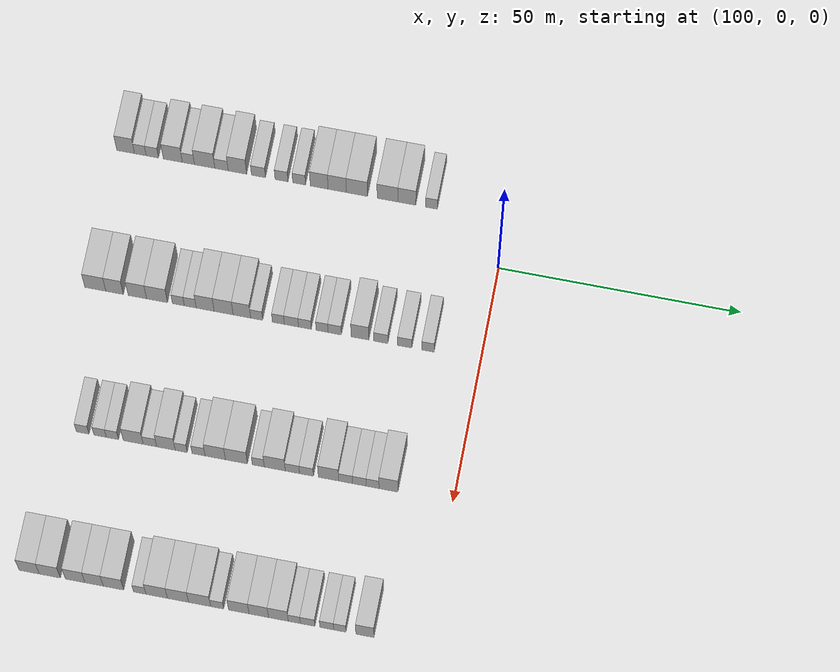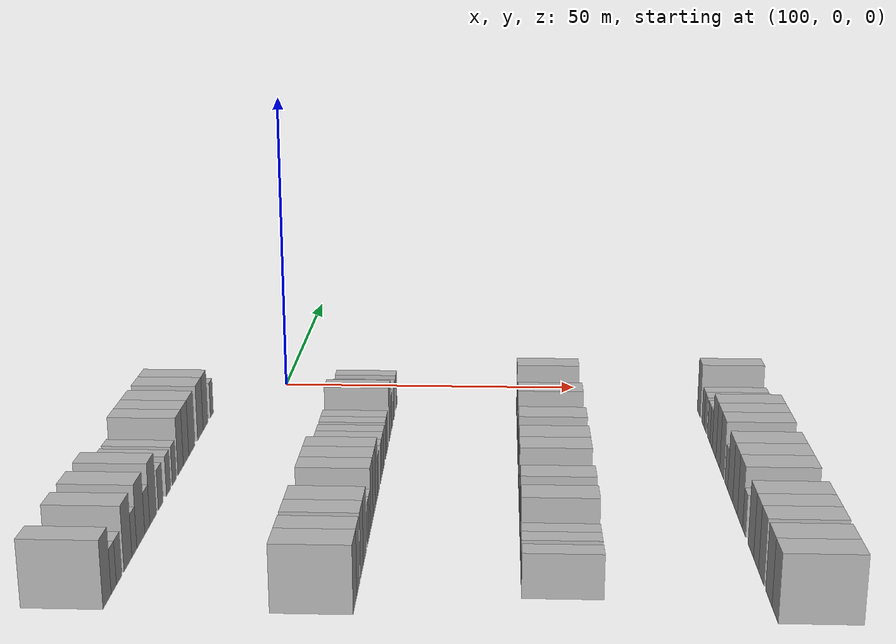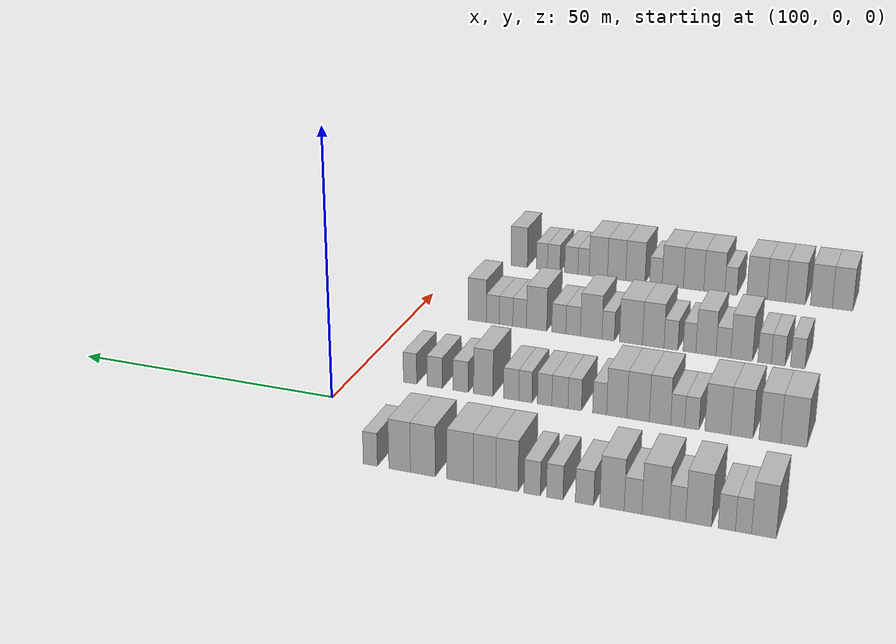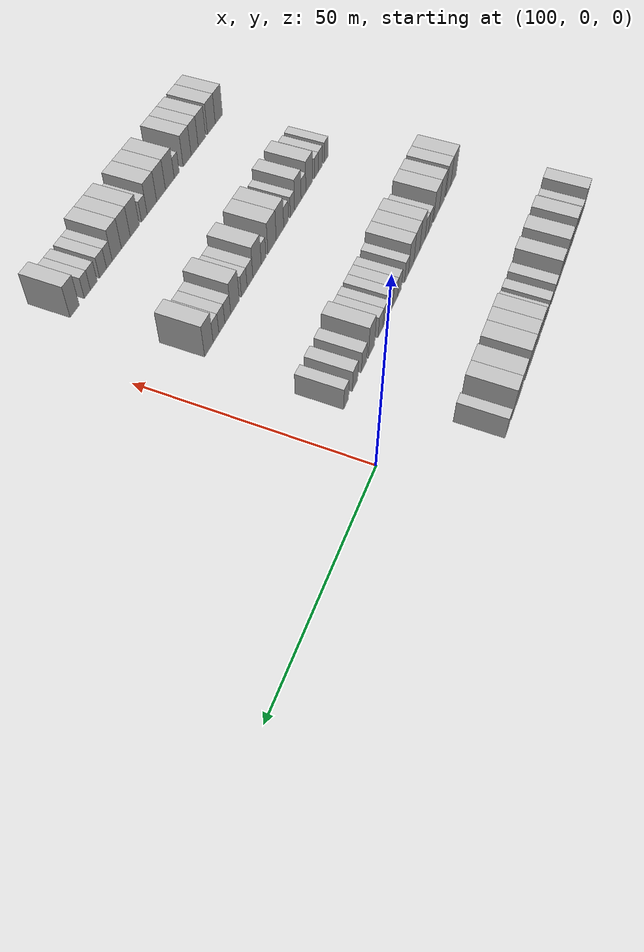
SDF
<sdf version="1.6">
 <world name="default">
  <model name="building_552">
   <static>1</static>
   <pose>85.0000 -79.7721 0 0.000000 0.000000 0.000000</pose>
   <link name="link">
    <pose>0 0 4.50 0 0 0</pose>
    <collision name="collision"><geometry><box><size>10.0000 3.7141 9.0000</size></box></geometry></collision>
    <visual name="visual">
     <cast_shadows>0</cast_shadows>
     <geometry><box><size>10.0000 3.7141 9.0000</size></box></geometry>
     <material>
      <script>
       <uri>model://HANNAS_wall/materials/scripts</uri>
       <uri>model://HANNAS_wall/materials/textures</uri>
       <name>vrc/HANNAS_wall</name>
      </script>
     </material>
    </visual>
   </link>
  </model>
  <model name="building_553">
   <static>1</static>
   <pose>85.0000 -76.7027 0 0.000000 0.000000 0.000000</pose>
   <link name="link">
    <pose>0 0 3.00 0 0 0</pose>
    <collision name="collision"><geometry><box><size>10.0000 2.4245 6.0000</size></box></geometry></collision>
    <visual name="visual">
     <cast_shadows>0</cast_shadows>
     <geometry><box><size>10.0000 2.4245 6.0000</size></box></geometry>
     <material>
      <script>
       <uri>model://HANNAS_wall/materials/scripts</uri>
       <uri>model://HANNAS_wall/materials/textures</uri>
       <name>vrc/HANNAS_wall</name>
      </script>
     </material>
    </visual>
   </link>
  </model>
  <model name="building_554">
   <static>1</static>
   <pose>85.0000 -74.1821 0 0.000000 0.000000 0.000000</pose>
   <link name="link">
    <pose>0 0 3.00 0 0 0</pose>
    <collision name="collision"><geometry><box><size>10.0000 2.6168 6.0000</size></box></geometry></collision>
    <visual name="visual">
     <cast_shadows>0</cast_shadows>
     <geometry><box><size>10.0000 2.6168 6.0000</size></box></geometry>
     <material>
      <script>
       <uri>model://HANNAS_wall/materials/scripts</uri>
       <uri>model://HANNAS_wall/materials/textures</uri>
       <name>vrc/HANNAS_wall</name>
      </script>
     </material>
    </visual>
   </link>
  </model>
  <model name="building_555">
   <static>1</static>
   <pose>85.0000 -69.8786 0 0.000000 0.000000 0.000000</pose>
   <link name="link">
    <pose>0 0 4.50 0 0 0</pose>
    <collision name="collision"><geometry><box><size>10.0000 3.9900 9.0000</size></box></geometry></collision>
    <visual name="visual">
     <cast_shadows>0</cast_shadows>
     <geometry><box><size>10.0000 3.9900 9.0000</size></box></geometry>
     <material>
      <script>
       <uri>model://HANNAS_wall/materials/scripts</uri>
       <uri>model://HANNAS_wall/materials/textures</uri>
       <name>vrc/HANNAS_wall</name>
      </script>
     </material>
    </visual>
   </link>
  </model>
  <model name="building_556">
   <static>1</static>
   <pose>85.0000 -66.6171 0 0.000000 0.000000 0.000000</pose>
   <link name="link">
    <pose>0 0 3.00 0 0 0</pose>
    <collision name="collision"><geometry><box><size>10.0000 2.5330 6.0000</size></box></geometry></collision>
    <visual name="visual">
     <cast_shadows>0</cast_shadows>
     <geometry><box><size>10.0000 2.5330 6.0000</size></box></geometry>
     <material>
      <script>
       <uri>model://HANNAS_wall/materials/scripts</uri>
       <uri>model://HANNAS_wall/materials/textures</uri>
       <name>vrc/HANNAS_wall</name>
      </script>
     </material>
    </visual>
   </link>
  </model>
  <model name="building_557">
   <static>1</static>
   <pose>85.0000 -63.2118 0 0.000000 0.000000 0.000000</pose>
   <link name="link">
    <pose>0 0 4.50 0 0 0</pose>
    <collision name="collision"><geometry><box><size>10.0000 4.2775 9.0000</size></box></geometry></collision>
    <visual name="visual">
     <cast_shadows>0</cast_shadows>
     <geometry><box><size>10.0000 4.2775 9.0000</size></box></geometry>
     <material>
      <script>
       <uri>model://HANNAS_wall/materials/scripts</uri>
       <uri>model://HANNAS_wall/materials/textures</uri>
       <name>vrc/HANNAS_wall</name>
      </script>
     </material>
    </visual>
   </link>
  </model>
  <model name="building_558">
   <static>1</static>
   <pose>85.0000 -59.6736 0 0.000000 0.000000 0.000000</pose>
   <link name="link">
    <pose>0 0 3.00 0 0 0</pose>
    <collision name="collision"><geometry><box><size>10.0000 2.7989 6.0000</size></box></geometry></collision>
    <visual name="visual">
     <cast_shadows>0</cast_shadows>
     <geometry><box><size>10.0000 2.7989 6.0000</size></box></geometry>
     <material>
      <script>
       <uri>model://HANNAS_wall/materials/scripts</uri>
       <uri>model://HANNAS_wall/materials/textures</uri>
       <name>vrc/HANNAS_wall</name>
      </script>
     </material>
    </visual>
   </link>
  </model>
  <model name="building_559">
   <static>1</static>
   <pose>85.0000 -56.3443 0 0.000000 0.000000 0.000000</pose>
   <link name="link">
    <pose>0 0 4.50 0 0 0</pose>
    <collision name="collision"><geometry><box><size>10.0000 3.8599 9.0000</size></box></geometry></collision>
    <visual name="visual">
     <cast_shadows>0</cast_shadows>
     <geometry><box><size>10.0000 3.8599 9.0000</size></box></geometry>
     <material>
      <script>
       <uri>model://HANNAS_wall/materials/scripts</uri>
       <uri>model://HANNAS_wall/materials/textures</uri>
       <name>vrc/HANNAS_wall</name>
      </script>
     </material>
    </visual>
   </link>
  </model>
  <model name="building_560">
   <static>1</static>
   <pose>85.0000 -51.9395 0 0.000000 0.000000 0.000000</pose>
   <link name="link">
    <pose>0 0 3.00 0 0 0</pose>
    <collision name="collision"><geometry><box><size>10.0000 2.9497 6.0000</size></box></geometry></collision>
    <visual name="visual">
     <cast_shadows>0</cast_shadows>
     <geometry><box><size>10.0000 2.9497 6.0000</size></box></geometry>
     <material>
      <script>
       <uri>model://HANNAS_wall/materials/scripts</uri>
       <uri>model://HANNAS_wall/materials/textures</uri>
       <name>vrc/HANNAS_wall</name>
      </script>
     </material>
    </visual>
   </link>
  </model>
  <model name="building_561">
   <static>1</static>
   <pose>85.0000 -47.1184 0 0.000000 0.000000 0.000000</pose>
   <link name="link">
    <pose>0 0 3.00 0 0 0</pose>
    <collision name="collision"><geometry><box><size>10.0000 2.6925 6.0000</size></box></geometry></collision>
    <visual name="visual">
     <cast_shadows>0</cast_shadows>
     <geometry><box><size>10.0000 2.6925 6.0000</size></box></geometry>
     <material>
      <script>
       <uri>model://HANNAS_wall/materials/scripts</uri>
       <uri>model://HANNAS_wall/materials/textures</uri>
       <name>vrc/HANNAS_wall</name>
      </script>
     </material>
    </visual>
   </link>
  </model>
  <model name="building_562">
   <static>1</static>
   <pose>85.0000 -43.4355 0 0.000000 0.000000 0.000000</pose>
   <link name="link">
    <pose>0 0 3.00 0 0 0</pose>
    <collision name="collision"><geometry><box><size>10.0000 2.6732 6.0000</size></box></geometry></collision>
    <visual name="visual">
     <cast_shadows>0</cast_shadows>
     <geometry><box><size>10.0000 2.6732 6.0000</size></box></geometry>
     <material>
      <script>
       <uri>model://HANNAS_wall/materials/scripts</uri>
       <uri>model://HANNAS_wall/materials/textures</uri>
       <name>vrc/HANNAS_wall</name>
      </script>
     </material>
    </visual>
   </link>
  </model>
  <model name="building_563">
   <static>1</static>
   <pose>85.0000 -39.2434 0 0.000000 0.000000 0.000000</pose>
   <link name="link">
    <pose>0 0 4.50 0 0 0</pose>
    <collision name="collision"><geometry><box><size>10.0000 3.7110 9.0000</size></box></geometry></collision>
    <visual name="visual">
     <cast_shadows>0</cast_shadows>
     <geometry><box><size>10.0000 3.7110 9.0000</size></box></geometry>
     <material>
      <script>
       <uri>model://HANNAS_wall/materials/scripts</uri>
       <uri>model://HANNAS_wall/materials/textures</uri>
       <name>vrc/HANNAS_wall</name>
      </script>
     </material>
    </visual>
   </link>
  </model>
  <model name="building_564">
   <static>1</static>
   <pose>85.0000 -35.4805 0 0.000000 0.000000 0.000000</pose>
   <link name="link">
    <pose>0 0 4.50 0 0 0</pose>
    <collision name="collision"><geometry><box><size>10.0000 3.8146 9.0000</size></box></geometry></collision>
    <visual name="visual">
     <cast_shadows>0</cast_shadows>
     <geometry><box><size>10.0000 3.8146 9.0000</size></box></geometry>
     <material>
      <script>
       <uri>model://HANNAS_wall/materials/scripts</uri>
       <uri>model://HANNAS_wall/materials/textures</uri>
       <name>vrc/HANNAS_wall</name>
      </script>
     </material>
    </visual>
   </link>
  </model>
  <model name="building_565">
   <static>1</static>
   <pose>85.0000 -31.3632 0 0.000000 0.000000 0.000000</pose>
   <link name="link">
    <pose>0 0 4.50 0 0 0</pose>
    <collision name="collision"><geometry><box><size>10.0000 4.4200 9.0000</size></box></geometry></collision>
    <visual name="visual">
     <cast_shadows>0</cast_shadows>
     <geometry><box><size>10.0000 4.4200 9.0000</size></box></geometry>
     <material>
      <script>
       <uri>model://HANNAS_wall/materials/scripts</uri>
       <uri>model://HANNAS_wall/materials/textures</uri>
       <name>vrc/HANNAS_wall</name>
      </script>
     </material>
    </visual>
   </link>
  </model>
  <model name="building_566">
   <static>1</static>
   <pose>85.0000 -25.0076 0 0.000000 0.000000 0.000000</pose>
   <link name="link">
    <pose>0 0 4.50 0 0 0</pose>
    <collision name="collision"><geometry><box><size>10.0000 4.2912 9.0000</size></box></geometry></collision>
    <visual name="visual">
     <cast_shadows>0</cast_shadows>
     <geometry><box><size>10.0000 4.2912 9.0000</size></box></geometry>
     <material>
      <script>
       <uri>model://HANNAS_wall/materials/scripts</uri>
       <uri>model://HANNAS_wall/materials/textures</uri>
       <name>vrc/HANNAS_wall</name>
      </script>
     </material>
    </visual>
   </link>
  </model>
  <model name="building_567">
   <static>1</static>
   <pose>85.0000 -20.9846 0 0.000000 0.000000 0.000000</pose>
   <link name="link">
    <pose>0 0 4.50 0 0 0</pose>
    <collision name="collision"><geometry><box><size>10.0000 3.7547 9.0000</size></box></geometry></collision>
    <visual name="visual">
     <cast_shadows>0</cast_shadows>
     <geometry><box><size>10.0000 3.7547 9.0000</size></box></geometry>
     <material>
      <script>
       <uri>model://HANNAS_wall/materials/scripts</uri>
       <uri>model://HANNAS_wall/materials/textures</uri>
       <name>vrc/HANNAS_wall</name>
      </script>
     </material>
    </visual>
   </link>
  </model>
  <model name="building_568">
   <static>1</static>
   <pose>85.0000 -15.8609 0 0.000000 0.000000 0.000000</pose>
   <link name="link">
    <pose>0 0 3.00 0 0 0</pose>
    <collision name="collision"><geometry><box><size>10.0000 2.4927 6.0000</size></box></geometry></collision>
    <visual name="visual">
     <cast_shadows>0</cast_shadows>
     <geometry><box><size>10.0000 2.4927 6.0000</size></box></geometry>
     <material>
      <script>
       <uri>model://HANNAS_wall/materials/scripts</uri>
       <uri>model://HANNAS_wall/materials/textures</uri>
       <name>vrc/HANNAS_wall</name>
      </script>
     </material>
    </visual>
   </link>
  </model>
  <model name="building_775">
   <static>1</static>
   <pose>115.0000 -79.6129 0 0.000000 0.000000 0.000000</pose>
   <link name="link">
    <pose>0 0 4.50 0 0 0</pose>
    <collision name="collision"><geometry><box><size>10.0000 4.3654 9.0000</size></box></geometry></collision>
    <visual name="visual">
     <cast_shadows>0</cast_shadows>
     <geometry><box><size>10.0000 4.3654 9.0000</size></box></geometry>
     <material>
      <script>
       <uri>model://HANNAS_wall/materials/scripts</uri>
       <uri>model://HANNAS_wall/materials/textures</uri>
       <name>vrc/HANNAS_wall</name>
      </script>
     </material>
    </visual>
   </link>
  </model>
  <model name="building_776">
   <static>1</static>
   <pose>115.0000 -75.6115 0 0.000000 0.000000 0.000000</pose>
   <link name="link">
    <pose>0 0 4.50 0 0 0</pose>
    <collision name="collision"><geometry><box><size>10.0000 3.6374 9.0000</size></box></geometry></collision>
    <visual name="visual">
     <cast_shadows>0</cast_shadows>
     <geometry><box><size>10.0000 3.6374 9.0000</size></box></geometry>
     <material>
      <script>
       <uri>model://HANNAS_wall/materials/scripts</uri>
       <uri>model://HANNAS_wall/materials/textures</uri>
       <name>vrc/HANNAS_wall</name>
      </script>
     </material>
    </visual>
   </link>
  </model>
  <model name="building_777">
   <static>1</static>
   <pose>115.0000 -70.8860 0 0.000000 0.000000 0.000000</pose>
   <link name="link">
    <pose>0 0 4.50 0 0 0</pose>
    <collision name="collision"><geometry><box><size>10.0000 3.8137 9.0000</size></box></geometry></collision>
    <visual name="visual">
     <cast_shadows>0</cast_shadows>
     <geometry><box><size>10.0000 3.8137 9.0000</size></box></geometry>
     <material>
      <script>
       <uri>model://HANNAS_wall/materials/scripts</uri>
       <uri>model://HANNAS_wall/materials/textures</uri>
       <name>vrc/HANNAS_wall</name>
      </script>
     </material>
    </visual>
   </link>
  </model>
  <model name="building_778">
   <static>1</static>
   <pose>115.0000 -66.8018 0 0.000000 0.000000 0.000000</pose>
   <link name="link">
    <pose>0 0 4.50 0 0 0</pose>
    <collision name="collision"><geometry><box><size>10.0000 4.3546 9.0000</size></box></geometry></collision>
    <visual name="visual">
     <cast_shadows>0</cast_shadows>
     <geometry><box><size>10.0000 4.3546 9.0000</size></box></geometry>
     <material>
      <script>
       <uri>model://HANNAS_wall/materials/scripts</uri>
       <uri>model://HANNAS_wall/materials/textures</uri>
       <name>vrc/HANNAS_wall</name>
      </script>
     </material>
    </visual>
   </link>
  </model>
  <model name="building_779">
   <static>1</static>
   <pose>115.0000 -62.3872 0 0.000000 0.000000 0.000000</pose>
   <link name="link">
    <pose>0 0 3.00 0 0 0</pose>
    <collision name="collision"><geometry><box><size>10.0000 2.4748 6.0000</size></box></geometry></collision>
    <visual name="visual">
     <cast_shadows>0</cast_shadows>
     <geometry><box><size>10.0000 2.4748 6.0000</size></box></geometry>
     <material>
      <script>
       <uri>model://HANNAS_wall/materials/scripts</uri>
       <uri>model://HANNAS_wall/materials/textures</uri>
       <name>vrc/HANNAS_wall</name>
      </script>
     </material>
    </visual>
   </link>
  </model>
  <model name="building_780">
   <static>1</static>
   <pose>115.0000 -59.9182 0 0.000000 0.000000 0.000000</pose>
   <link name="link">
    <pose>0 0 3.00 0 0 0</pose>
    <collision name="collision"><geometry><box><size>10.0000 2.4631 6.0000</size></box></geometry></collision>
    <visual name="visual">
     <cast_shadows>0</cast_shadows>
     <geometry><box><size>10.0000 2.4631 6.0000</size></box></geometry>
     <material>
      <script>
       <uri>model://HANNAS_wall/materials/scripts</uri>
       <uri>model://HANNAS_wall/materials/textures</uri>
       <name>vrc/HANNAS_wall</name>
      </script>
     </material>
    </visual>
   </link>
  </model>
  <model name="building_781">
   <static>1</static>
   <pose>115.0000 -56.8294 0 0.000000 0.000000 0.000000</pose>
   <link name="link">
    <pose>0 0 4.50 0 0 0</pose>
    <collision name="collision"><geometry><box><size>10.0000 3.7147 9.0000</size></box></geometry></collision>
    <visual name="visual">
     <cast_shadows>0</cast_shadows>
     <geometry><box><size>10.0000 3.7147 9.0000</size></box></geometry>
     <material>
      <script>
       <uri>model://HANNAS_wall/materials/scripts</uri>
       <uri>model://HANNAS_wall/materials/textures</uri>
       <name>vrc/HANNAS_wall</name>
      </script>
     </material>
    </visual>
   </link>
  </model>
  <model name="building_782">
   <static>1</static>
   <pose>115.0000 -53.0049 0 0.000000 0.000000 0.000000</pose>
   <link name="link">
    <pose>0 0 4.50 0 0 0</pose>
    <collision name="collision"><geometry><box><size>10.0000 3.9342 9.0000</size></box></geometry></collision>
    <visual name="visual">
     <cast_shadows>0</cast_shadows>
     <geometry><box><size>10.0000 3.9342 9.0000</size></box></geometry>
     <material>
      <script>
       <uri>model://HANNAS_wall/materials/scripts</uri>
       <uri>model://HANNAS_wall/materials/textures</uri>
       <name>vrc/HANNAS_wall</name>
      </script>
     </material>
    </visual>
   </link>
  </model>
  <model name="building_783">
   <static>1</static>
   <pose>115.0000 -49.2304 0 0.000000 0.000000 0.000000</pose>
   <link name="link">
    <pose>0 0 4.50 0 0 0</pose>
    <collision name="collision"><geometry><box><size>10.0000 3.6148 9.0000</size></box></geometry></collision>
    <visual name="visual">
     <cast_shadows>0</cast_shadows>
     <geometry><box><size>10.0000 3.6148 9.0000</size></box></geometry>
     <material>
      <script>
       <uri>model://HANNAS_wall/materials/scripts</uri>
       <uri>model://HANNAS_wall/materials/textures</uri>
       <name>vrc/HANNAS_wall</name>
      </script>
     </material>
    </visual>
   </link>
  </model>
  <model name="building_784">
   <static>1</static>
   <pose>115.0000 -46.1725 0 0.000000 0.000000 0.000000</pose>
   <link name="link">
    <pose>0 0 3.00 0 0 0</pose>
    <collision name="collision"><geometry><box><size>10.0000 2.5010 6.0000</size></box></geometry></collision>
    <visual name="visual">
     <cast_shadows>0</cast_shadows>
     <geometry><box><size>10.0000 2.5010 6.0000</size></box></geometry>
     <material>
      <script>
       <uri>model://HANNAS_wall/materials/scripts</uri>
       <uri>model://HANNAS_wall/materials/textures</uri>
       <name>vrc/HANNAS_wall</name>
      </script>
     </material>
    </visual>
   </link>
  </model>
  <model name="building_785">
   <static>1</static>
   <pose>115.0000 -41.6934 0 0.000000 0.000000 0.000000</pose>
   <link name="link">
    <pose>0 0 3.00 0 0 0</pose>
    <collision name="collision"><geometry><box><size>10.0000 2.4573 6.0000</size></box></geometry></collision>
    <visual name="visual">
     <cast_shadows>0</cast_shadows>
     <geometry><box><size>10.0000 2.4573 6.0000</size></box></geometry>
     <material>
      <script>
       <uri>model://HANNAS_wall/materials/scripts</uri>
       <uri>model://HANNAS_wall/materials/textures</uri>
       <name>vrc/HANNAS_wall</name>
      </script>
     </material>
    </visual>
   </link>
  </model>
  <model name="building_786">
   <static>1</static>
   <pose>115.0000 -38.9997 0 0.000000 0.000000 0.000000</pose>
   <link name="link">
    <pose>0 0 3.00 0 0 0</pose>
    <collision name="collision"><geometry><box><size>10.0000 2.9301 6.0000</size></box></geometry></collision>
    <visual name="visual">
     <cast_shadows>0</cast_shadows>
     <geometry><box><size>10.0000 2.9301 6.0000</size></box></geometry>
     <material>
      <script>
       <uri>model://HANNAS_wall/materials/scripts</uri>
       <uri>model://HANNAS_wall/materials/textures</uri>
       <name>vrc/HANNAS_wall</name>
      </script>
     </material>
    </visual>
   </link>
  </model>
  <model name="building_787">
   <static>1</static>
   <pose>115.0000 -36.2115 0 0.000000 0.000000 0.000000</pose>
   <link name="link">
    <pose>0 0 3.00 0 0 0</pose>
    <collision name="collision"><geometry><box><size>10.0000 2.6463 6.0000</size></box></geometry></collision>
    <visual name="visual">
     <cast_shadows>0</cast_shadows>
     <geometry><box><size>10.0000 2.6463 6.0000</size></box></geometry>
     <material>
      <script>
       <uri>model://HANNAS_wall/materials/scripts</uri>
       <uri>model://HANNAS_wall/materials/textures</uri>
       <name>vrc/HANNAS_wall</name>
      </script>
     </material>
    </visual>
   </link>
  </model>
  <model name="building_788">
   <static>1</static>
   <pose>115.0000 -32.6613 0 0.000000 0.000000 0.000000</pose>
   <link name="link">
    <pose>0 0 3.00 0 0 0</pose>
    <collision name="collision"><geometry><box><size>10.0000 2.4540 6.0000</size></box></geometry></collision>
    <visual name="visual">
     <cast_shadows>0</cast_shadows>
     <geometry><box><size>10.0000 2.4540 6.0000</size></box></geometry>
     <material>
      <script>
       <uri>model://HANNAS_wall/materials/scripts</uri>
       <uri>model://HANNAS_wall/materials/textures</uri>
       <name>vrc/HANNAS_wall</name>
      </script>
     </material>
    </visual>
   </link>
  </model>
  <model name="building_789">
   <static>1</static>
   <pose>115.0000 -30.0411 0 0.000000 0.000000 0.000000</pose>
   <link name="link">
    <pose>0 0 3.00 0 0 0</pose>
    <collision name="collision"><geometry><box><size>10.0000 2.7864 6.0000</size></box></geometry></collision>
    <visual name="visual">
     <cast_shadows>0</cast_shadows>
     <geometry><box><size>10.0000 2.7864 6.0000</size></box></geometry>
     <material>
      <script>
       <uri>model://HANNAS_wall/materials/scripts</uri>
       <uri>model://HANNAS_wall/materials/textures</uri>
       <name>vrc/HANNAS_wall</name>
      </script>
     </material>
    </visual>
   </link>
  </model>
  <model name="building_790">
   <static>1</static>
   <pose>115.0000 -24.8198 0 0.000000 0.000000 0.000000</pose>
   <link name="link">
    <pose>0 0 4.50 0 0 0</pose>
    <collision name="collision"><geometry><box><size>10.0000 3.6562 9.0000</size></box></geometry></collision>
    <visual name="visual">
     <cast_shadows>0</cast_shadows>
     <geometry><box><size>10.0000 3.6562 9.0000</size></box></geometry>
     <material>
      <script>
       <uri>model://HANNAS_wall/materials/scripts</uri>
       <uri>model://HANNAS_wall/materials/textures</uri>
       <name>vrc/HANNAS_wall</name>
      </script>
     </material>
    </visual>
   </link>
  </model>
  <model name="building_791">
   <static>1</static>
   <pose>115.0000 -20.5394 0 0.000000 0.000000 0.000000</pose>
   <link name="link">
    <pose>0 0 3.00 0 0 0</pose>
    <collision name="collision"><geometry><box><size>10.0000 2.9045 6.0000</size></box></geometry></collision>
    <visual name="visual">
     <cast_shadows>0</cast_shadows>
     <geometry><box><size>10.0000 2.9045 6.0000</size></box></geometry>
     <material>
      <script>
       <uri>model://HANNAS_wall/materials/scripts</uri>
       <uri>model://HANNAS_wall/materials/textures</uri>
       <name>vrc/HANNAS_wall</name>
      </script>
     </material>
    </visual>
   </link>
  </model>
  <model name="building_792">
   <static>1</static>
   <pose>115.0000 -15.6085 0 0.000000 0.000000 0.000000</pose>
   <link name="link">
    <pose>0 0 3.00 0 0 0</pose>
    <collision name="collision"><geometry><box><size>10.0000 2.9574 6.0000</size></box></geometry></collision>
    <visual name="visual">
     <cast_shadows>0</cast_shadows>
     <geometry><box><size>10.0000 2.9574 6.0000</size></box></geometry>
     <material>
      <script>
       <uri>model://HANNAS_wall/materials/scripts</uri>
       <uri>model://HANNAS_wall/materials/textures</uri>
       <name>vrc/HANNAS_wall</name>
      </script>
     </material>
    </visual>
   </link>
  </model>
  <model name="building_793">
   <static>1</static>
   <pose>115.0000 -10.8407 0 0.000000 0.000000 0.000000</pose>
   <link name="link">
    <pose>0 0 3.00 0 0 0</pose>
    <collision name="collision"><geometry><box><size>10.0000 2.5782 6.0000</size></box></geometry></collision>
    <visual name="visual">
     <cast_shadows>0</cast_shadows>
     <geometry><box><size>10.0000 2.5782 6.0000</size></box></geometry>
     <material>
      <script>
       <uri>model://HANNAS_wall/materials/scripts</uri>
       <uri>model://HANNAS_wall/materials/textures</uri>
       <name>vrc/HANNAS_wall</name>
      </script>
     </material>
    </visual>
   </link>
  </model>
  <model name="building_1012">
   <static>1</static>
   <pose>145.0000 -75.6962 0 0.000000 0.000000 0.000000</pose>
   <link name="link">
    <pose>0 0 3.00 0 0 0</pose>
    <collision name="collision"><geometry><box><size>10.0000 2.6338 6.0000</size></box></geometry></collision>
    <visual name="visual">
     <cast_shadows>0</cast_shadows>
     <geometry><box><size>10.0000 2.6338 6.0000</size></box></geometry>
     <material>
      <script>
       <uri>model://HANNAS_wall/materials/scripts</uri>
       <uri>model://HANNAS_wall/materials/textures</uri>
       <name>vrc/HANNAS_wall</name>
      </script>
     </material>
    </visual>
   </link>
  </model>
  <model name="building_1013">
   <static>1</static>
   <pose>145.0000 -72.1018 0 0.000000 0.000000 0.000000</pose>
   <link name="link">
    <pose>0 0 3.00 0 0 0</pose>
    <collision name="collision"><geometry><box><size>10.0000 2.5551 6.0000</size></box></geometry></collision>
    <visual name="visual">
     <cast_shadows>0</cast_shadows>
     <geometry><box><size>10.0000 2.5551 6.0000</size></box></geometry>
     <material>
      <script>
       <uri>model://HANNAS_wall/materials/scripts</uri>
       <uri>model://HANNAS_wall/materials/textures</uri>
       <name>vrc/HANNAS_wall</name>
      </script>
     </material>
    </visual>
   </link>
  </model>
  <model name="building_1014">
   <static>1</static>
   <pose>145.0000 -69.5819 0 0.000000 0.000000 0.000000</pose>
   <link name="link">
    <pose>0 0 3.00 0 0 0</pose>
    <collision name="collision"><geometry><box><size>10.0000 2.4846 6.0000</size></box></geometry></collision>
    <visual name="visual">
     <cast_shadows>0</cast_shadows>
     <geometry><box><size>10.0000 2.4846 6.0000</size></box></geometry>
     <material>
      <script>
       <uri>model://HANNAS_wall/materials/scripts</uri>
       <uri>model://HANNAS_wall/materials/textures</uri>
       <name>vrc/HANNAS_wall</name>
      </script>
     </material>
    </visual>
   </link>
  </model>
  <model name="building_1015">
   <static>1</static>
   <pose>145.0000 -65.3022 0 0.000000 0.000000 0.000000</pose>
   <link name="link">
    <pose>0 0 4.50 0 0 0</pose>
    <collision name="collision"><geometry><box><size>10.0000 4.0749 9.0000</size></box></geometry></collision>
    <visual name="visual">
     <cast_shadows>0</cast_shadows>
     <geometry><box><size>10.0000 4.0749 9.0000</size></box></geometry>
     <material>
      <script>
       <uri>model://HANNAS_wall/materials/scripts</uri>
       <uri>model://HANNAS_wall/materials/textures</uri>
       <name>vrc/HANNAS_wall</name>
      </script>
     </material>
    </visual>
   </link>
  </model>
  <model name="building_1016">
   <static>1</static>
   <pose>145.0000 -61.8812 0 0.000000 0.000000 0.000000</pose>
   <link name="link">
    <pose>0 0 3.00 0 0 0</pose>
    <collision name="collision"><geometry><box><size>10.0000 2.7671 6.0000</size></box></geometry></collision>
    <visual name="visual">
     <cast_shadows>0</cast_shadows>
     <geometry><box><size>10.0000 2.7671 6.0000</size></box></geometry>
     <material>
      <script>
       <uri>model://HANNAS_wall/materials/scripts</uri>
       <uri>model://HANNAS_wall/materials/textures</uri>
       <name>vrc/HANNAS_wall</name>
      </script>
     </material>
    </visual>
   </link>
  </model>
  <model name="building_1017">
   <static>1</static>
   <pose>145.0000 -58.5932 0 0.000000 0.000000 0.000000</pose>
   <link name="link">
    <pose>0 0 4.50 0 0 0</pose>
    <collision name="collision"><geometry><box><size>10.0000 3.8088 9.0000</size></box></geometry></collision>
    <visual name="visual">
     <cast_shadows>0</cast_shadows>
     <geometry><box><size>10.0000 3.8088 9.0000</size></box></geometry>
     <material>
      <script>
       <uri>model://HANNAS_wall/materials/scripts</uri>
       <uri>model://HANNAS_wall/materials/textures</uri>
       <name>vrc/HANNAS_wall</name>
      </script>
     </material>
    </visual>
   </link>
  </model>
  <model name="building_1018">
   <static>1</static>
   <pose>145.0000 -55.4643 0 0.000000 0.000000 0.000000</pose>
   <link name="link">
    <pose>0 0 3.00 0 0 0</pose>
    <collision name="collision"><geometry><box><size>10.0000 2.4490 6.0000</size></box></geometry></collision>
    <visual name="visual">
     <cast_shadows>0</cast_shadows>
     <geometry><box><size>10.0000 2.4490 6.0000</size></box></geometry>
     <material>
      <script>
       <uri>model://HANNAS_wall/materials/scripts</uri>
       <uri>model://HANNAS_wall/materials/textures</uri>
       <name>vrc/HANNAS_wall</name>
      </script>
     </material>
    </visual>
   </link>
  </model>
  <model name="building_1019">
   <static>1</static>
   <pose>145.0000 -51.9038 0 0.000000 0.000000 0.000000</pose>
   <link name="link">
    <pose>0 0 3.00 0 0 0</pose>
    <collision name="collision"><geometry><box><size>10.0000 2.6721 6.0000</size></box></geometry></collision>
    <visual name="visual">
     <cast_shadows>0</cast_shadows>
     <geometry><box><size>10.0000 2.6721 6.0000</size></box></geometry>
     <material>
      <script>
       <uri>model://HANNAS_wall/materials/scripts</uri>
       <uri>model://HANNAS_wall/materials/textures</uri>
       <name>vrc/HANNAS_wall</name>
      </script>
     </material>
    </visual>
   </link>
  </model>
  <model name="building_1020">
   <static>1</static>
   <pose>145.0000 -48.4867 0 0.000000 0.000000 0.000000</pose>
   <link name="link">
    <pose>0 0 4.50 0 0 0</pose>
    <collision name="collision"><geometry><box><size>10.0000 4.1620 9.0000</size></box></geometry></collision>
    <visual name="visual">
     <cast_shadows>0</cast_shadows>
     <geometry><box><size>10.0000 4.1620 9.0000</size></box></geometry>
     <material>
      <script>
       <uri>model://HANNAS_wall/materials/scripts</uri>
       <uri>model://HANNAS_wall/materials/textures</uri>
       <name>vrc/HANNAS_wall</name>
      </script>
     </material>
    </visual>
   </link>
  </model>
  <model name="building_1021">
   <static>1</static>
   <pose>145.0000 -44.1577 0 0.000000 0.000000 0.000000</pose>
   <link name="link">
    <pose>0 0 4.50 0 0 0</pose>
    <collision name="collision"><geometry><box><size>10.0000 4.4961 9.0000</size></box></geometry></collision>
    <visual name="visual">
     <cast_shadows>0</cast_shadows>
     <geometry><box><size>10.0000 4.4961 9.0000</size></box></geometry>
     <material>
      <script>
       <uri>model://HANNAS_wall/materials/scripts</uri>
       <uri>model://HANNAS_wall/materials/textures</uri>
       <name>vrc/HANNAS_wall</name>
      </script>
     </material>
    </visual>
   </link>
  </model>
  <model name="building_1022">
   <static>1</static>
   <pose>145.0000 -39.6807 0 0.000000 0.000000 0.000000</pose>
   <link name="link">
    <pose>0 0 3.00 0 0 0</pose>
    <collision name="collision"><geometry><box><size>10.0000 2.4578 6.0000</size></box></geometry></collision>
    <visual name="visual">
     <cast_shadows>0</cast_shadows>
     <geometry><box><size>10.0000 2.4578 6.0000</size></box></geometry>
     <material>
      <script>
       <uri>model://HANNAS_wall/materials/scripts</uri>
       <uri>model://HANNAS_wall/materials/textures</uri>
       <name>vrc/HANNAS_wall</name>
      </script>
     </material>
    </visual>
   </link>
  </model>
  <model name="building_1023">
   <static>1</static>
   <pose>145.0000 -36.3090 0 0.000000 0.000000 0.000000</pose>
   <link name="link">
    <pose>0 0 4.50 0 0 0</pose>
    <collision name="collision"><geometry><box><size>10.0000 4.2856 9.0000</size></box></geometry></collision>
    <visual name="visual">
     <cast_shadows>0</cast_shadows>
     <geometry><box><size>10.0000 4.2856 9.0000</size></box></geometry>
     <material>
      <script>
       <uri>model://HANNAS_wall/materials/scripts</uri>
       <uri>model://HANNAS_wall/materials/textures</uri>
       <name>vrc/HANNAS_wall</name>
      </script>
     </material>
    </visual>
   </link>
  </model>
  <model name="building_1024">
   <static>1</static>
   <pose>145.0000 -32.7095 0 0.000000 0.000000 0.000000</pose>
   <link name="link">
    <pose>0 0 3.00 0 0 0</pose>
    <collision name="collision"><geometry><box><size>10.0000 2.9133 6.0000</size></box></geometry></collision>
    <visual name="visual">
     <cast_shadows>0</cast_shadows>
     <geometry><box><size>10.0000 2.9133 6.0000</size></box></geometry>
     <material>
      <script>
       <uri>model://HANNAS_wall/materials/scripts</uri>
       <uri>model://HANNAS_wall/materials/textures</uri>
       <name>vrc/HANNAS_wall</name>
      </script>
     </material>
    </visual>
   </link>
  </model>
  <model name="building_1025">
   <static>1</static>
   <pose>145.0000 -29.8279 0 0.000000 0.000000 0.000000</pose>
   <link name="link">
    <pose>0 0 3.00 0 0 0</pose>
    <collision name="collision"><geometry><box><size>10.0000 2.8499 6.0000</size></box></geometry></collision>
    <visual name="visual">
     <cast_shadows>0</cast_shadows>
     <geometry><box><size>10.0000 2.8499 6.0000</size></box></geometry>
     <material>
      <script>
       <uri>model://HANNAS_wall/materials/scripts</uri>
       <uri>model://HANNAS_wall/materials/textures</uri>
       <name>vrc/HANNAS_wall</name>
      </script>
     </material>
    </visual>
   </link>
  </model>
  <model name="building_1026">
   <static>1</static>
   <pose>145.0000 -25.3269 0 0.000000 0.000000 0.000000</pose>
   <link name="link">
    <pose>0 0 4.50 0 0 0</pose>
    <collision name="collision"><geometry><box><size>10.0000 4.1520 9.0000</size></box></geometry></collision>
    <visual name="visual">
     <cast_shadows>0</cast_shadows>
     <geometry><box><size>10.0000 4.1520 9.0000</size></box></geometry>
     <material>
      <script>
       <uri>model://HANNAS_wall/materials/scripts</uri>
       <uri>model://HANNAS_wall/materials/textures</uri>
       <name>vrc/HANNAS_wall</name>
      </script>
     </material>
    </visual>
   </link>
  </model>
  <model name="building_1027">
   <static>1</static>
   <pose>145.0000 -21.8485 0 0.000000 0.000000 0.000000</pose>
   <link name="link">
    <pose>0 0 3.00 0 0 0</pose>
    <collision name="collision"><geometry><box><size>10.0000 2.8049 6.0000</size></box></geometry></collision>
    <visual name="visual">
     <cast_shadows>0</cast_shadows>
     <geometry><box><size>10.0000 2.8049 6.0000</size></box></geometry>
     <material>
      <script>
       <uri>model://HANNAS_wall/materials/scripts</uri>
       <uri>model://HANNAS_wall/materials/textures</uri>
       <name>vrc/HANNAS_wall</name>
      </script>
     </material>
    </visual>
   </link>
  </model>
  <model name="building_1028">
   <static>1</static>
   <pose>145.0000 -19.0626 0 0.000000 0.000000 0.000000</pose>
   <link name="link">
    <pose>0 0 3.00 0 0 0</pose>
    <collision name="collision"><geometry><box><size>10.0000 2.7668 6.0000</size></box></geometry></collision>
    <visual name="visual">
     <cast_shadows>0</cast_shadows>
     <geometry><box><size>10.0000 2.7668 6.0000</size></box></geometry>
     <material>
      <script>
       <uri>model://HANNAS_wall/materials/scripts</uri>
       <uri>model://HANNAS_wall/materials/textures</uri>
       <name>vrc/HANNAS_wall</name>
      </script>
     </material>
    </visual>
   </link>
  </model>
  <model name="building_1029">
   <static>1</static>
   <pose>145.0000 -16.3604 0 0.000000 0.000000 0.000000</pose>
   <link name="link">
    <pose>0 0 3.00 0 0 0</pose>
    <collision name="collision"><geometry><box><size>10.0000 2.6377 6.0000</size></box></geometry></collision>
    <visual name="visual">
     <cast_shadows>0</cast_shadows>
     <geometry><box><size>10.0000 2.6377 6.0000</size></box></geometry>
     <material>
      <script>
       <uri>model://HANNAS_wall/materials/scripts</uri>
       <uri>model://HANNAS_wall/materials/textures</uri>
       <name>vrc/HANNAS_wall</name>
      </script>
     </material>
    </visual>
   </link>
  </model>
  <model name="building_1030">
   <static>1</static>
   <pose>145.0000 -13.1069 0 0.000000 0.000000 0.000000</pose>
   <link name="link">
    <pose>0 0 4.50 0 0 0</pose>
    <collision name="collision"><geometry><box><size>10.0000 3.8693 9.0000</size></box></geometry></collision>
    <visual name="visual">
     <cast_shadows>0</cast_shadows>
     <geometry><box><size>10.0000 3.8693 9.0000</size></box></geometry>
     <material>
      <script>
       <uri>model://HANNAS_wall/materials/scripts</uri>
       <uri>model://HANNAS_wall/materials/textures</uri>
       <name>vrc/HANNAS_wall</name>
      </script>
     </material>
    </visual>
   </link>
  </model>
  <model name="building_1235">
   <static>1</static>
   <pose>175.0000 -80.0337 0 0.000000 0.000000 0.000000</pose>
   <link name="link">
    <pose>0 0 4.50 0 0 0</pose>
    <collision name="collision"><geometry><box><size>10.0000 4.0820 9.0000</size></box></geometry></collision>
    <visual name="visual">
     <cast_shadows>0</cast_shadows>
     <geometry><box><size>10.0000 4.0820 9.0000</size></box></geometry>
     <material>
      <script>
       <uri>model://HANNAS_wall/materials/scripts</uri>
       <uri>model://HANNAS_wall/materials/textures</uri>
       <name>vrc/HANNAS_wall</name>
      </script>
     </material>
    </visual>
   </link>
  </model>
  <model name="building_1236">
   <static>1</static>
   <pose>175.0000 -75.8379 0 0.000000 0.000000 0.000000</pose>
   <link name="link">
    <pose>0 0 4.50 0 0 0</pose>
    <collision name="collision"><geometry><box><size>10.0000 4.3097 9.0000</size></box></geometry></collision>
    <visual name="visual">
     <cast_shadows>0</cast_shadows>
     <geometry><box><size>10.0000 4.3097 9.0000</size></box></geometry>
     <material>
      <script>
       <uri>model://HANNAS_wall/materials/scripts</uri>
       <uri>model://HANNAS_wall/materials/textures</uri>
       <name>vrc/HANNAS_wall</name>
      </script>
     </material>
    </visual>
   </link>
  </model>
  <model name="building_1237">
   <static>1</static>
   <pose>175.0000 -70.6823 0 0.000000 0.000000 0.000000</pose>
   <link name="link">
    <pose>0 0 4.50 0 0 0</pose>
    <collision name="collision"><geometry><box><size>10.0000 4.0015 9.0000</size></box></geometry></collision>
    <visual name="visual">
     <cast_shadows>0</cast_shadows>
     <geometry><box><size>10.0000 4.0015 9.0000</size></box></geometry>
     <material>
      <script>
       <uri>model://HANNAS_wall/materials/scripts</uri>
       <uri>model://HANNAS_wall/materials/textures</uri>
       <name>vrc/HANNAS_wall</name>
      </script>
     </material>
    </visual>
   </link>
  </model>
  <model name="building_1238">
   <static>1</static>
   <pose>175.0000 -66.8287 0 0.000000 0.000000 0.000000</pose>
   <link name="link">
    <pose>0 0 4.50 0 0 0</pose>
    <collision name="collision"><geometry><box><size>10.0000 3.7057 9.0000</size></box></geometry></collision>
    <visual name="visual">
     <cast_shadows>0</cast_shadows>
     <geometry><box><size>10.0000 3.7057 9.0000</size></box></geometry>
     <material>
      <script>
       <uri>model://HANNAS_wall/materials/scripts</uri>
       <uri>model://HANNAS_wall/materials/textures</uri>
       <name>vrc/HANNAS_wall</name>
      </script>
     </material>
    </visual>
   </link>
  </model>
  <model name="building_1239">
   <static>1</static>
   <pose>175.0000 -62.8949 0 0.000000 0.000000 0.000000</pose>
   <link name="link">
    <pose>0 0 4.50 0 0 0</pose>
    <collision name="collision"><geometry><box><size>10.0000 4.1620 9.0000</size></box></geometry></collision>
    <visual name="visual">
     <cast_shadows>0</cast_shadows>
     <geometry><box><size>10.0000 4.1620 9.0000</size></box></geometry>
     <material>
      <script>
       <uri>model://HANNAS_wall/materials/scripts</uri>
       <uri>model://HANNAS_wall/materials/textures</uri>
       <name>vrc/HANNAS_wall</name>
      </script>
     </material>
    </visual>
   </link>
  </model>
  <model name="building_1240">
   <static>1</static>
   <pose>175.0000 -57.5610 0 0.000000 0.000000 0.000000</pose>
   <link name="link">
    <pose>0 0 3.00 0 0 0</pose>
    <collision name="collision"><geometry><box><size>10.0000 2.5057 6.0000</size></box></geometry></collision>
    <visual name="visual">
     <cast_shadows>0</cast_shadows>
     <geometry><box><size>10.0000 2.5057 6.0000</size></box></geometry>
     <material>
      <script>
       <uri>model://HANNAS_wall/materials/scripts</uri>
       <uri>model://HANNAS_wall/materials/textures</uri>
       <name>vrc/HANNAS_wall</name>
      </script>
     </material>
    </visual>
   </link>
  </model>
  <model name="building_1241">
   <static>1</static>
   <pose>175.0000 -54.1252 0 0.000000 0.000000 0.000000</pose>
   <link name="link">
    <pose>0 0 4.50 0 0 0</pose>
    <collision name="collision"><geometry><box><size>10.0000 4.3659 9.0000</size></box></geometry></collision>
    <visual name="visual">
     <cast_shadows>0</cast_shadows>
     <geometry><box><size>10.0000 4.3659 9.0000</size></box></geometry>
     <material>
      <script>
       <uri>model://HANNAS_wall/materials/scripts</uri>
       <uri>model://HANNAS_wall/materials/textures</uri>
       <name>vrc/HANNAS_wall</name>
      </script>
     </material>
    </visual>
   </link>
  </model>
  <model name="building_1242">
   <static>1</static>
   <pose>175.0000 -49.8021 0 0.000000 0.000000 0.000000</pose>
   <link name="link">
    <pose>0 0 4.50 0 0 0</pose>
    <collision name="collision"><geometry><box><size>10.0000 4.2802 9.0000</size></box></geometry></collision>
    <visual name="visual">
     <cast_shadows>0</cast_shadows>
     <geometry><box><size>10.0000 4.2802 9.0000</size></box></geometry>
     <material>
      <script>
       <uri>model://HANNAS_wall/materials/scripts</uri>
       <uri>model://HANNAS_wall/materials/textures</uri>
       <name>vrc/HANNAS_wall</name>
      </script>
     </material>
    </visual>
   </link>
  </model>
  <model name="building_1243">
   <static>1</static>
   <pose>175.0000 -45.4219 0 0.000000 0.000000 0.000000</pose>
   <link name="link">
    <pose>0 0 4.50 0 0 0</pose>
    <collision name="collision"><geometry><box><size>10.0000 4.4802 9.0000</size></box></geometry></collision>
    <visual name="visual">
     <cast_shadows>0</cast_shadows>
     <geometry><box><size>10.0000 4.4802 9.0000</size></box></geometry>
     <material>
      <script>
       <uri>model://HANNAS_wall/materials/scripts</uri>
       <uri>model://HANNAS_wall/materials/textures</uri>
       <name>vrc/HANNAS_wall</name>
      </script>
     </material>
    </visual>
   </link>
  </model>
  <model name="building_1244">
   <static>1</static>
   <pose>175.0000 -41.8644 0 0.000000 0.000000 0.000000</pose>
   <link name="link">
    <pose>0 0 3.00 0 0 0</pose>
    <collision name="collision"><geometry><box><size>10.0000 2.6348 6.0000</size></box></geometry></collision>
    <visual name="visual">
     <cast_shadows>0</cast_shadows>
     <geometry><box><size>10.0000 2.6348 6.0000</size></box></geometry>
     <material>
      <script>
       <uri>model://HANNAS_wall/materials/scripts</uri>
       <uri>model://HANNAS_wall/materials/textures</uri>
       <name>vrc/HANNAS_wall</name>
      </script>
     </material>
    </visual>
   </link>
  </model>
  <model name="building_1245">
   <static>1</static>
   <pose>175.0000 -37.4819 0 0.000000 0.000000 0.000000</pose>
   <link name="link">
    <pose>0 0 4.50 0 0 0</pose>
    <collision name="collision"><geometry><box><size>10.0000 4.1302 9.0000</size></box></geometry></collision>
    <visual name="visual">
     <cast_shadows>0</cast_shadows>
     <geometry><box><size>10.0000 4.1302 9.0000</size></box></geometry>
     <material>
      <script>
       <uri>model://HANNAS_wall/materials/scripts</uri>
       <uri>model://HANNAS_wall/materials/textures</uri>
       <name>vrc/HANNAS_wall</name>
      </script>
     </material>
    </visual>
   </link>
  </model>
  <model name="building_1246">
   <static>1</static>
   <pose>175.0000 -33.4517 0 0.000000 0.000000 0.000000</pose>
   <link name="link">
    <pose>0 0 4.50 0 0 0</pose>
    <collision name="collision"><geometry><box><size>10.0000 3.9302 9.0000</size></box></geometry></collision>
    <visual name="visual">
     <cast_shadows>0</cast_shadows>
     <geometry><box><size>10.0000 3.9302 9.0000</size></box></geometry>
     <material>
      <script>
       <uri>model://HANNAS_wall/materials/scripts</uri>
       <uri>model://HANNAS_wall/materials/textures</uri>
       <name>vrc/HANNAS_wall</name>
      </script>
     </material>
    </visual>
   </link>
  </model>
  <model name="building_1247">
   <static>1</static>
   <pose>175.0000 -29.4926 0 0.000000 0.000000 0.000000</pose>
   <link name="link">
    <pose>0 0 4.50 0 0 0</pose>
    <collision name="collision"><geometry><box><size>10.0000 3.9880 9.0000</size></box></geometry></collision>
    <visual name="visual">
     <cast_shadows>0</cast_shadows>
     <geometry><box><size>10.0000 3.9880 9.0000</size></box></geometry>
     <material>
      <script>
       <uri>model://HANNAS_wall/materials/scripts</uri>
       <uri>model://HANNAS_wall/materials/textures</uri>
       <name>vrc/HANNAS_wall</name>
      </script>
     </material>
    </visual>
   </link>
  </model>
  <model name="building_1248">
   <static>1</static>
   <pose>175.0000 -26.2767 0 0.000000 0.000000 0.000000</pose>
   <link name="link">
    <pose>0 0 3.00 0 0 0</pose>
    <collision name="collision"><geometry><box><size>10.0000 2.4438 6.0000</size></box></geometry></collision>
    <visual name="visual">
     <cast_shadows>0</cast_shadows>
     <geometry><box><size>10.0000 2.4438 6.0000</size></box></geometry>
     <material>
      <script>
       <uri>model://HANNAS_wall/materials/scripts</uri>
       <uri>model://HANNAS_wall/materials/textures</uri>
       <name>vrc/HANNAS_wall</name>
      </script>
     </material>
    </visual>
   </link>
  </model>
  <model name="building_1249">
   <static>1</static>
   <pose>175.0000 -23.5821 0 0.000000 0.000000 0.000000</pose>
   <link name="link">
    <pose>0 0 3.00 0 0 0</pose>
    <collision name="collision"><geometry><box><size>10.0000 2.9454 6.0000</size></box></geometry></collision>
    <visual name="visual">
     <cast_shadows>0</cast_shadows>
     <geometry><box><size>10.0000 2.9454 6.0000</size></box></geometry>
     <material>
      <script>
       <uri>model://HANNAS_wall/materials/scripts</uri>
       <uri>model://HANNAS_wall/materials/textures</uri>
       <name>vrc/HANNAS_wall</name>
      </script>
     </material>
    </visual>
   </link>
  </model>
  <model name="building_1250">
   <static>1</static>
   <pose>175.0000 -19.7236 0 0.000000 0.000000 0.000000</pose>
   <link name="link">
    <pose>0 0 3.00 0 0 0</pose>
    <collision name="collision"><geometry><box><size>10.0000 2.7716 6.0000</size></box></geometry></collision>
    <visual name="visual">
     <cast_shadows>0</cast_shadows>
     <geometry><box><size>10.0000 2.7716 6.0000</size></box></geometry>
     <material>
      <script>
       <uri>model://HANNAS_wall/materials/scripts</uri>
       <uri>model://HANNAS_wall/materials/textures</uri>
       <name>vrc/HANNAS_wall</name>
      </script>
     </material>
    </visual>
   </link>
  </model>
  <model name="building_1251">
   <static>1</static>
   <pose>175.0000 -17.0912 0 0.000000 0.000000 0.000000</pose>
   <link name="link">
    <pose>0 0 3.00 0 0 0</pose>
    <collision name="collision"><geometry><box><size>10.0000 2.4932 6.0000</size></box></geometry></collision>
    <visual name="visual">
     <cast_shadows>0</cast_shadows>
     <geometry><box><size>10.0000 2.4932 6.0000</size></box></geometry>
     <material>
      <script>
       <uri>model://HANNAS_wall/materials/scripts</uri>
       <uri>model://HANNAS_wall/materials/textures</uri>
       <name>vrc/HANNAS_wall</name>
      </script>
     </material>
    </visual>
   </link>
  </model>
  <model name="building_1252">
   <static>1</static>
   <pose>175.0000 -12.0130 0 0.000000 0.000000 0.000000</pose>
   <link name="link">
    <pose>0 0 4.50 0 0 0</pose>
    <collision name="collision"><geometry><box><size>10.0000 3.6633 9.0000</size></box></geometry></collision>
    <visual name="visual">
     <cast_shadows>0</cast_shadows>
     <geometry><box><size>10.0000 3.6633 9.0000</size></box></geometry>
     <material>
      <script>
       <uri>model://HANNAS_wall/materials/scripts</uri>
       <uri>model://HANNAS_wall/materials/textures</uri>
       <name>vrc/HANNAS_wall</name>
      </script>
     </material>
    </visual>
   </link>
  </model>
 </world>
</sdf>
